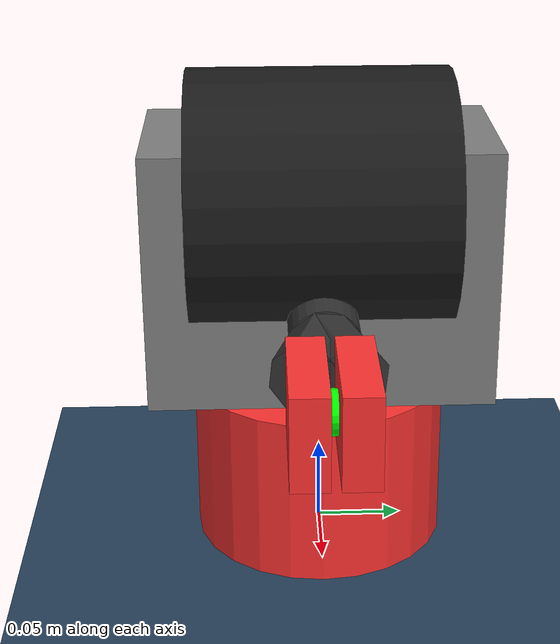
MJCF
<mujoco model="GIRAF">
  <compiler angle="radian" autolimits="true"/>

  <option gravity="0 0 -9.81" timestep="0.001" iterations="200" solver="Newton" tolerance="1e-10" noslip_iterations="10"/>

  <default>
    <geom density="10"/>

    <default class="gripper">
      <geom friction="1.5 0.5 0.1" solref="0.01 1" solimp="0.95 0.98 0.0001" condim="4" margin="0.001"/>
    </default>
  </default>

  <visual>
    <headlight diffuse="0.6 0.6 0.6" ambient="0.3 0.3 0.3" specular="0 0 0"/>
    <rgba haze="0.15 0.25 0.35 1"/>
    <global azimuth="120" elevation="-20"/>
  </visual>

  <asset>
    <texture type="skybox" builtin="gradient" rgb1="0.3 0.5 0.7" rgb2="0 0 0" width="512" height="512"/>
    <texture name="groundplane" type="2d" builtin="checker" rgb1="0.2 0.3 0.4" rgb2="0.1 0.2 0.3" width="512" height="512" mark="edge" markrgb="0.8 0.8 0.8"/>
    <material name="groundplane" texture="groundplane" texrepeat="5 5" texuniform="true" reflectance="0.2"/>
  </asset>

  <worldbody>
    <light pos="0 0 3" dir="0 0 -1" directional="false" diffuse="0.8 0.8 0.8" specular="0.2 0.2 0.2"/>
    <light pos="2 2 3" dir="-1 -1 -1" directional="false" diffuse="0.4 0.4 0.4" specular="0.1 0.1 0.1"/>
    <light pos="-2 2 3" dir="1 -1 -1" directional="false" diffuse="0.4 0.4 0.4" specular="0.1 0.1 0.1"/>

    <geom name="floor" pos="0 0 0" size="5 5 0.1" type="plane" material="groundplane"
          friction="1.5 0.5 0.1" solref="0.01 1" solimp="0.95 0.98 0.0001" condim="4" margin="0.001"/>

    <body name="base" pos="0 0 0">
      <geom name="cylinder1" type="cylinder" fromto="0 0 0 0 0 0.1" size="0.075" rgba="1.0 0.196 0.196 1"/>

      <body name="spool_bracket" pos="0 0 0.1">
        <joint name="R1" type="hinge" axis="0 0 1" range="-3.14159 3.14159" damping="0.5" armature="0.005" frictionloss="0.3"/>
        <geom name="box1" type="box" size="0.05 0.1 0.075" pos="0 0 0.075" rgba="0.5 0.5 0.5 1"/>

        <body name="spool" pos="0 0 0.11">
          <joint name="R2" type="hinge" axis="0 -1 0" range="-3.14159 3.14159" damping="0.5" armature="0.005" frictionloss="0.3"/>
          <geom name="cylinder2" type="cylinder" fromto="0 -0.075 0 0 0.075 0" size="0.075" rgba="0.1 0.1 0.1 1"/>
          <site name="boom_base" pos="0 0 -0.055" size="0.01" rgba="0.1 0.1 0.1 1"/>

          <body name="boom" pos="0 0 -0.055">
            <joint name="P3" type="slide" axis="1 0 0" limited="true" range="0.2 3.0" damping="20.0" armature="0.01" frictionloss="1"/>
            <geom name="sphere1" type="sphere" size="0.05" pos="0 0 0" rgba="0.1 0.1 0.1 1"/>
            <site name="boom_end" pos="0 0 0" size="0.01" rgba="0.1 0.1 0.1 1"/>

            <body name="wrist" pos="0 0 0">
              <joint name="R4" type="hinge" axis="0 -1 0" range="-3.14159 3.14159" damping="0.5" armature="0.005" frictionloss="0.3"/>
              <joint name="R5" type="hinge" axis="0 0 1" pos="0.04325 0 0" range="-3.14159 3.14159" damping="0.5" armature="0.005" frictionloss="0.3"/>
              <joint name="R6" type="hinge" axis="1 0 0" pos="0.04325 0 0" range="-3.14159 3.14159" damping="0.5" armature="0.005" frictionloss="0.3"/>
              <geom name="wrist_link" type="cylinder" fromto="0 0 0 0.085 0 0" size="0.02" rgba="0.2 0.2 0.2 1"/>
              <site name="wrist_base" pos="0.085 0 0" size="0.01" rgba="0.1 0.1 0.1 1"/>
              <site name="end_effector" pos="0.16325 0 0" size="0.012" rgba="0 1 0 1"/>

              <!-- Wrist-mounted camera: points in +x (forward), VFOV=55 degrees -->
              <camera name="wrist_cam" pos="0.05 0 0.0475" xyaxes="0 -1 0 0 0 1" fovy="55" mode="fixed"/>

              <body name="left_gripper" pos="0.16325 0 0">
                <joint name="left_grip_joint" type="slide" axis="0 1 0" limited="true" range="0 0.05" damping="1" armature="0.001" frictionloss="0.1"/>
                <geom name="left_jaw" class="gripper" type="box" size="0.035 0.01 0.025" pos="0 0.0125 0" rgba="1.0 0.196 0.196 1"/>
                <site name="left_jaw_base" pos="-0.035 0.0125 0" size="0.01" rgba="0.1 0.1 0.1 1"/>
              </body>

              <body name="right_gripper" pos="0.16325 0 0">
                <joint name="right_grip_joint" type="slide" axis="0 -1 0" limited="true" range="0 0.05" damping="1" armature="0.001" frictionloss="0.1"/>
                <geom name="right_jaw" class="gripper" type="box" size="0.035 0.01 0.025" pos="0 -0.0125 0" rgba="1.0 0.196 0.196 1"/>
                <site name="right_jaw_base" pos="-0.035 -0.0125 0" size="0.01" rgba="0.1 0.1 0.1 1"/>
              </body>
            </body>
          </body>
        </body>
      </body>
    </body>
  </worldbody>

  <tendon>
    <spatial name="boom" width="0.04" rgba="0.2 0.2 0.2 1">
      <site site="boom_base"/>
      <site site="boom_end"/>
    </spatial>
    <spatial name="wrist" width="0.02" rgba="0.2 0.2 0.2 1">
      <site site="left_jaw_base"/>
      <site site="wrist_base"/>
      <site site="right_jaw_base"/>
    </spatial>
  </tendon>

  <actuator>
    <position name="actuator_R1" joint="R1" kp="100" ctrlrange="-3.14159 3.14159"/>
    <position name="actuator_R2" joint="R2" kp="100" ctrlrange="-3.14159 3.14159"/>
    <position name="actuator_P3" joint="P3" kp="500" ctrlrange="0.2 3.0"/>
    <position name="actuator_R4" joint="R4" kp="100" ctrlrange="-3.14159 3.14159"/>
    <position name="actuator_R5" joint="R5" kp="100" ctrlrange="-3.14159 3.14159"/>
    <position name="actuator_R6" joint="R6" kp="100" ctrlrange="-3.14159 3.14159"/>
    <position name="actuator_left_grip" joint="left_grip_joint" kp="200" ctrlrange="0 0.05"/>
    <position name="actuator_right_grip" joint="right_grip_joint" kp="200" ctrlrange="0 0.05"/>
  </actuator>

</mujoco>
